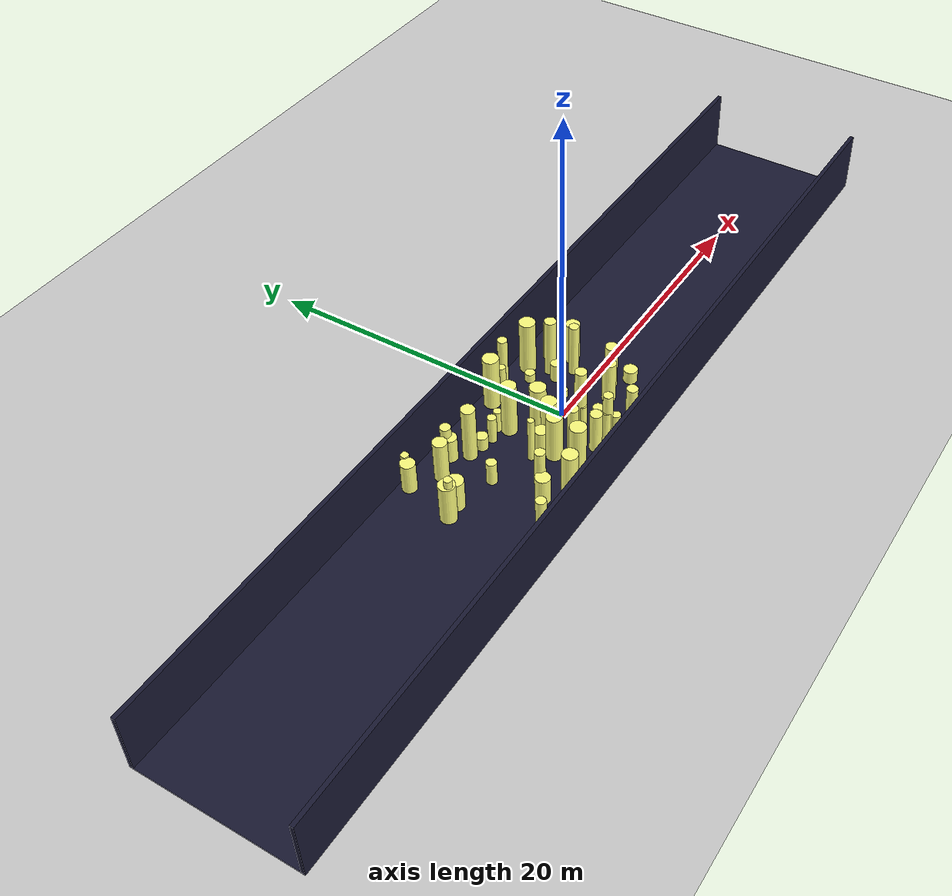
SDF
<sdf version="1.4">
 <world name="default">
  <include><uri>model://ground_plane</uri></include>
  <include><uri>model://sun</uri></include>
  <model name="forest">
   <static>true</static>
   <link name="cylinder3">
    <pose>-8.564383305479438 -3.849886137093559 1.5123958988349284 0 0 0</pose>
    <visual name="visual">
     <geometry>
      <cylinder><radius>0.30243147252921776</radius><length>3.024791797669857</length></cylinder>
     </geometry>
     <material>
      <ambient>0.6 0.6 0.6 1</ambient>
      <diffuse>1 1 0.5 1</diffuse>
      <specular>0 0 0</specular>
      <emissive>0 0 0 1</emissive>
     </material>
    </visual>
    <collision name="collision">
     <geometry>
      <cylinder><radius>0.30243147252921776</radius><length>3.024791797669857</length></cylinder>
     </geometry>
     <max_contacts>0</max_contacts>
    </collision>
   </link>
   <link name="cylinder4">
    <pose>-2.900554031618597 2.557931823986218 0.7568684038138516 0 0 0</pose>
    <visual name="visual">
     <geometry>
      <cylinder><radius>0.23991858585969472</radius><length>1.5137368076277031</length></cylinder>
     </geometry>
     <material>
      <ambient>0.6 0.6 0.6 1</ambient>
      <diffuse>1 1 0.5 1</diffuse>
      <specular>0 0 0</specular>
      <emissive>0 0 0 1</emissive>
     </material>
    </visual>
    <collision name="collision">
     <geometry>
      <cylinder><radius>0.23991858585969472</radius><length>1.5137368076277031</length></cylinder>
     </geometry>
     <max_contacts>0</max_contacts>
    </collision>
   </link>
   <link name="cylinder5">
    <pose>1.313964049926085 -3.8849885170803002 1.1643307283110613 0 0 0</pose>
    <visual name="visual">
     <geometry>
      <cylinder><radius>0.34957092293422487</radius><length>2.3286614566221226</length></cylinder>
     </geometry>
     <material>
      <ambient>0.6 0.6 0.6 1</ambient>
      <diffuse>1 1 0.5 1</diffuse>
      <specular>0 0 0</specular>
      <emissive>0 0 0 1</emissive>
     </material>
    </visual>
    <collision name="collision">
     <geometry>
      <cylinder><radius>0.34957092293422487</radius><length>2.3286614566221226</length></cylinder>
     </geometry>
     <max_contacts>0</max_contacts>
    </collision>
   </link>
   <link name="cylinder8">
    <pose>3.702451197373353 -1.1173654504020272 1.5423725622052054 0 0 0</pose>
    <visual name="visual">
     <geometry>
      <cylinder><radius>0.3797419441660974</radius><length>3.0847451244104107</length></cylinder>
     </geometry>
     <material>
      <ambient>0.6 0.6 0.6 1</ambient>
      <diffuse>1 1 0.5 1</diffuse>
      <specular>0 0 0</specular>
      <emissive>0 0 0 1</emissive>
     </material>
    </visual>
    <collision name="collision">
     <geometry>
      <cylinder><radius>0.3797419441660974</radius><length>3.0847451244104107</length></cylinder>
     </geometry>
     <max_contacts>0</max_contacts>
    </collision>
   </link>
   <link name="cylinder10">
    <pose>-0.7432844458045196 3.606858276507017 1.3522364615848521 0 0 0</pose>
    <visual name="visual">
     <geometry>
      <cylinder><radius>0.2308794543132723</radius><length>2.7044729231697042</length></cylinder>
     </geometry>
     <material>
      <ambient>0.6 0.6 0.6 1</ambient>
      <diffuse>1 1 0.5 1</diffuse>
      <specular>0 0 0</specular>
      <emissive>0 0 0 1</emissive>
     </material>
    </visual>
    <collision name="collision">
     <geometry>
      <cylinder><radius>0.2308794543132723</radius><length>2.7044729231697042</length></cylinder>
     </geometry>
     <max_contacts>0</max_contacts>
    </collision>
   </link>
   <link name="cylinder11">
    <pose>-6.175850569645785 -2.4807912993549444 0.9096561768423661 0 0 0</pose>
    <visual name="visual">
     <geometry>
      <cylinder><radius>0.44854788550880226</radius><length>1.8193123536847322</length></cylinder>
     </geometry>
     <material>
      <ambient>0.6 0.6 0.6 1</ambient>
      <diffuse>1 1 0.5 1</diffuse>
      <specular>0 0 0</specular>
      <emissive>0 0 0 1</emissive>
     </material>
    </visual>
    <collision name="collision">
     <geometry>
      <cylinder><radius>0.44854788550880226</radius><length>1.8193123536847322</length></cylinder>
     </geometry>
     <max_contacts>0</max_contacts>
    </collision>
   </link>
   <link name="cylinder14">
    <pose>0.38465863244394427 -2.1824603545408303 0.7296094701448637 0 0 0</pose>
    <visual name="visual">
     <geometry>
      <cylinder><radius>0.3377690477103479</radius><length>1.4592189402897273</length></cylinder>
     </geometry>
     <material>
      <ambient>0.6 0.6 0.6 1</ambient>
      <diffuse>1 1 0.5 1</diffuse>
      <specular>0 0 0</specular>
      <emissive>0 0 0 1</emissive>
     </material>
    </visual>
    <collision name="collision">
     <geometry>
      <cylinder><radius>0.3377690477103479</radius><length>1.4592189402897273</length></cylinder>
     </geometry>
     <max_contacts>0</max_contacts>
    </collision>
   </link>
   <link name="cylinder16">
    <pose>-1.9539033908960448 -0.29834200253286536 1.4721334536363095 0 0 0</pose>
    <visual name="visual">
     <geometry>
      <cylinder><radius>0.47072366416954475</radius><length>2.944266907272619</length></cylinder>
     </geometry>
     <material>
      <ambient>0.6 0.6 0.6 1</ambient>
      <diffuse>1 1 0.5 1</diffuse>
      <specular>0 0 0</specular>
      <emissive>0 0 0 1</emissive>
     </material>
    </visual>
    <collision name="collision">
     <geometry>
      <cylinder><radius>0.47072366416954475</radius><length>2.944266907272619</length></cylinder>
     </geometry>
     <max_contacts>0</max_contacts>
    </collision>
   </link>
   <link name="cylinder19">
    <pose>-3.765693110406204 2.355463253587745 0.9191963411689219 0 0 0</pose>
    <visual name="visual">
     <geometry>
      <cylinder><radius>0.2706350855969597</radius><length>1.8383926823378438</length></cylinder>
     </geometry>
     <material>
      <ambient>0.6 0.6 0.6 1</ambient>
      <diffuse>1 1 0.5 1</diffuse>
      <specular>0 0 0</specular>
      <emissive>0 0 0 1</emissive>
     </material>
    </visual>
    <collision name="collision">
     <geometry>
      <cylinder><radius>0.2706350855969597</radius><length>1.8383926823378438</length></cylinder>
     </geometry>
     <max_contacts>0</max_contacts>
    </collision>
   </link>
   <link name="cylinder21">
    <pose>-6.465806620505148 0.6290368193749618 0.784559223407981 0 0 0</pose>
    <visual name="visual">
     <geometry>
      <cylinder><radius>0.3131240611195635</radius><length>1.569118446815962</length></cylinder>
     </geometry>
     <material>
      <ambient>0.6 0.6 0.6 1</ambient>
      <diffuse>1 1 0.5 1</diffuse>
      <specular>0 0 0</specular>
      <emissive>0 0 0 1</emissive>
     </material>
    </visual>
    <collision name="collision">
     <geometry>
      <cylinder><radius>0.3131240611195635</radius><length>1.569118446815962</length></cylinder>
     </geometry>
     <max_contacts>0</max_contacts>
    </collision>
   </link>
   <link name="cylinder24">
    <pose>2.6504902617085655 -1.5724567202440998 1.4095039634519797 0 0 0</pose>
    <visual name="visual">
     <geometry>
      <cylinder><radius>0.411862540570846</radius><length>2.8190079269039594</length></cylinder>
     </geometry>
     <material>
      <ambient>0.6 0.6 0.6 1</ambient>
      <diffuse>1 1 0.5 1</diffuse>
      <specular>0 0 0</specular>
      <emissive>0 0 0 1</emissive>
     </material>
    </visual>
    <collision name="collision">
     <geometry>
      <cylinder><radius>0.411862540570846</radius><length>2.8190079269039594</length></cylinder>
     </geometry>
     <max_contacts>0</max_contacts>
    </collision>
   </link>
   <link name="cylinder27">
    <pose>0.030223723886287246 -1.3574997205438324 0.729812917239677 0 0 0</pose>
    <visual name="visual">
     <geometry>
      <cylinder><radius>0.23898480077361903</radius><length>1.459625834479354</length></cylinder>
     </geometry>
     <material>
      <ambient>0.6 0.6 0.6 1</ambient>
      <diffuse>1 1 0.5 1</diffuse>
      <specular>0 0 0</specular>
      <emissive>0 0 0 1</emissive>
     </material>
    </visual>
    <collision name="collision">
     <geometry>
      <cylinder><radius>0.23898480077361903</radius><length>1.459625834479354</length></cylinder>
     </geometry>
     <max_contacts>0</max_contacts>
    </collision>
   </link>
   <link name="cylinder31">
    <pose>-5.7248087732027955 -3.898096598784978 1.9844881413474247 0 0 0</pose>
    <visual name="visual">
     <geometry>
      <cylinder><radius>0.4616749639141078</radius><length>3.9689762826948494</length></cylinder>
     </geometry>
     <material>
      <ambient>0.6 0.6 0.6 1</ambient>
      <diffuse>1 1 0.5 1</diffuse>
      <specular>0 0 0</specular>
      <emissive>0 0 0 1</emissive>
     </material>
    </visual>
    <collision name="collision">
     <geometry>
      <cylinder><radius>0.4616749639141078</radius><length>3.9689762826948494</length></cylinder>
     </geometry>
     <max_contacts>0</max_contacts>
    </collision>
   </link>
   <link name="cylinder32">
    <pose>-2.612749098027951 1.9390665615845082 1.7797026861179794 0 0 0</pose>
    <visual name="visual">
     <geometry>
      <cylinder><radius>0.46663268230172333</radius><length>3.559405372235959</length></cylinder>
     </geometry>
     <material>
      <ambient>0.6 0.6 0.6 1</ambient>
      <diffuse>1 1 0.5 1</diffuse>
      <specular>0 0 0</specular>
      <emissive>0 0 0 1</emissive>
     </material>
    </visual>
    <collision name="collision">
     <geometry>
      <cylinder><radius>0.46663268230172333</radius><length>3.559405372235959</length></cylinder>
     </geometry>
     <max_contacts>0</max_contacts>
    </collision>
   </link>
   <link name="cylinder36">
    <pose>-1.5742121338384827 0.6539919885100796 1.617637387164022 0 0 0</pose>
    <visual name="visual">
     <geometry>
      <cylinder><radius>0.4964075488692837</radius><length>3.235274774328044</length></cylinder>
     </geometry>
     <material>
      <ambient>0.6 0.6 0.6 1</ambient>
      <diffuse>1 1 0.5 1</diffuse>
      <specular>0 0 0</specular>
      <emissive>0 0 0 1</emissive>
     </material>
    </visual>
    <collision name="collision">
     <geometry>
      <cylinder><radius>0.4964075488692837</radius><length>3.235274774328044</length></cylinder>
     </geometry>
     <max_contacts>0</max_contacts>
    </collision>
   </link>
   <link name="cylinder41">
    <pose>4.68731782256253 -1.9014256234514848 0.46083601857654544 0 0 0</pose>
    <visual name="visual">
     <geometry>
      <cylinder><radius>0.4309551025935311</radius><length>0.9216720371530909</length></cylinder>
     </geometry>
     <material>
      <ambient>0.6 0.6 0.6 1</ambient>
      <diffuse>1 1 0.5 1</diffuse>
      <specular>0 0 0</specular>
      <emissive>0 0 0 1</emissive>
     </material>
    </visual>
    <collision name="collision">
     <geometry>
      <cylinder><radius>0.4309551025935311</radius><length>0.9216720371530909</length></cylinder>
     </geometry>
     <max_contacts>0</max_contacts>
    </collision>
   </link>
   <link name="cylinder45">
    <pose>-1.3032437107933568 -2.973867848958396 1.3769102334652517 0 0 0</pose>
    <visual name="visual">
     <geometry>
      <cylinder><radius>0.36313667066523897</radius><length>2.7538204669305033</length></cylinder>
     </geometry>
     <material>
      <ambient>0.6 0.6 0.6 1</ambient>
      <diffuse>1 1 0.5 1</diffuse>
      <specular>0 0 0</specular>
      <emissive>0 0 0 1</emissive>
     </material>
    </visual>
    <collision name="collision">
     <geometry>
      <cylinder><radius>0.36313667066523897</radius><length>2.7538204669305033</length></cylinder>
     </geometry>
     <max_contacts>0</max_contacts>
    </collision>
   </link>
   <link name="cylinder47">
    <pose>-2.881032032274838 -0.36255889499444915 0.747176304831089 0 0 0</pose>
    <visual name="visual">
     <geometry>
      <cylinder><radius>0.4252923107288233</radius><length>1.494352609662178</length></cylinder>
     </geometry>
     <material>
      <ambient>0.6 0.6 0.6 1</ambient>
      <diffuse>1 1 0.5 1</diffuse>
      <specular>0 0 0</specular>
      <emissive>0 0 0 1</emissive>
     </material>
    </visual>
    <collision name="collision">
     <geometry>
      <cylinder><radius>0.4252923107288233</radius><length>1.494352609662178</length></cylinder>
     </geometry>
     <max_contacts>0</max_contacts>
    </collision>
   </link>
   <link name="cylinder48">
    <pose>2.4846986057671145 1.9130466747569361 0.6471594099374249 0 0 0</pose>
    <visual name="visual">
     <geometry>
      <cylinder><radius>0.33719902281976466</radius><length>1.2943188198748499</length></cylinder>
     </geometry>
     <material>
      <ambient>0.6 0.6 0.6 1</ambient>
      <diffuse>1 1 0.5 1</diffuse>
      <specular>0 0 0</specular>
      <emissive>0 0 0 1</emissive>
     </material>
    </visual>
    <collision name="collision">
     <geometry>
      <cylinder><radius>0.33719902281976466</radius><length>1.2943188198748499</length></cylinder>
     </geometry>
     <max_contacts>0</max_contacts>
    </collision>
   </link>
   <link name="cylinder52">
    <pose>0.3368699926229901 -4.299567529728484 1.9949361753774957 0 0 0</pose>
    <visual name="visual">
     <geometry>
      <cylinder><radius>0.3314914886592272</radius><length>3.9898723507549914</length></cylinder>
     </geometry>
     <material>
      <ambient>0.6 0.6 0.6 1</ambient>
      <diffuse>1 1 0.5 1</diffuse>
      <specular>0 0 0</specular>
      <emissive>0 0 0 1</emissive>
     </material>
    </visual>
    <collision name="collision">
     <geometry>
      <cylinder><radius>0.3314914886592272</radius><length>3.9898723507549914</length></cylinder>
     </geometry>
     <max_contacts>0</max_contacts>
    </collision>
   </link>
   <link name="cylinder59">
    <pose>-5.707107157399356 -2.0282953423020844 1.5502964679855378 0 0 0</pose>
    <visual name="visual">
     <geometry>
      <cylinder><radius>0.31808759075491394</radius><length>3.1005929359710755</length></cylinder>
     </geometry>
     <material>
      <ambient>0.6 0.6 0.6 1</ambient>
      <diffuse>1 1 0.5 1</diffuse>
      <specular>0 0 0</specular>
      <emissive>0 0 0 1</emissive>
     </material>
    </visual>
    <collision name="collision">
     <geometry>
      <cylinder><radius>0.31808759075491394</radius><length>3.1005929359710755</length></cylinder>
     </geometry>
     <max_contacts>0</max_contacts>
    </collision>
   </link>
   <link name="cylinder62">
    <pose>-2.901472166175374 -2.7436957905164228 1.4894896232662533 0 0 0</pose>
    <visual name="visual">
     <geometry>
      <cylinder><radius>0.49416868157909205</radius><length>2.9789792465325067</length></cylinder>
     </geometry>
     <material>
      <ambient>0.6 0.6 0.6 1</ambient>
      <diffuse>1 1 0.5 1</diffuse>
      <specular>0 0 0</specular>
      <emissive>0 0 0 1</emissive>
     </material>
    </visual>
    <collision name="collision">
     <geometry>
      <cylinder><radius>0.49416868157909205</radius><length>2.9789792465325067</length></cylinder>
     </geometry>
     <max_contacts>0</max_contacts>
    </collision>
   </link>
   <link name="cylinder64">
    <pose>-2.9951060131589173 -1.282730983613277 1.5510060885853776 0 0 0</pose>
    <visual name="visual">
     <geometry>
      <cylinder><radius>0.4828278855854824</radius><length>3.102012177170755</length></cylinder>
     </geometry>
     <material>
      <ambient>0.6 0.6 0.6 1</ambient>
      <diffuse>1 1 0.5 1</diffuse>
      <specular>0 0 0</specular>
      <emissive>0 0 0 1</emissive>
     </material>
    </visual>
    <collision name="collision">
     <geometry>
      <cylinder><radius>0.4828278855854824</radius><length>3.102012177170755</length></cylinder>
     </geometry>
     <max_contacts>0</max_contacts>
    </collision>
   </link>
   <link name="cylinder65">
    <pose>-4.54233675551416 2.539219464537606 0.4785798824447355 0 0 0</pose>
    <visual name="visual">
     <geometry>
      <cylinder><radius>0.36170618760472717</radius><length>0.957159764889471</length></cylinder>
     </geometry>
     <material>
      <ambient>0.6 0.6 0.6 1</ambient>
      <diffuse>1 1 0.5 1</diffuse>
      <specular>0 0 0</specular>
      <emissive>0 0 0 1</emissive>
     </material>
    </visual>
    <collision name="collision">
     <geometry>
      <cylinder><radius>0.36170618760472717</radius><length>0.957159764889471</length></cylinder>
     </geometry>
     <max_contacts>0</max_contacts>
    </collision>
   </link>
   <link name="cylinder68">
    <pose>-1.8989215876720245 -1.8381434383348196 1.534291837957601 0 0 0</pose>
    <visual name="visual">
     <geometry>
      <cylinder><radius>0.32201063985585865</radius><length>3.068583675915202</length></cylinder>
     </geometry>
     <material>
      <ambient>0.6 0.6 0.6 1</ambient>
      <diffuse>1 1 0.5 1</diffuse>
      <specular>0 0 0</specular>
      <emissive>0 0 0 1</emissive>
     </material>
    </visual>
    <collision name="collision">
     <geometry>
      <cylinder><radius>0.32201063985585865</radius><length>3.068583675915202</length></cylinder>
     </geometry>
     <max_contacts>0</max_contacts>
    </collision>
   </link>
   <link name="cylinder71">
    <pose>3.55687519586791 1.335641643773612 1.8053275692516058 0 0 0</pose>
    <visual name="visual">
     <geometry>
      <cylinder><radius>0.3002299005960643</radius><length>3.6106551385032115</length></cylinder>
     </geometry>
     <material>
      <ambient>0.6 0.6 0.6 1</ambient>
      <diffuse>1 1 0.5 1</diffuse>
      <specular>0 0 0</specular>
      <emissive>0 0 0 1</emissive>
     </material>
    </visual>
    <collision name="collision">
     <geometry>
      <cylinder><radius>0.3002299005960643</radius><length>3.6106551385032115</length></cylinder>
     </geometry>
     <max_contacts>0</max_contacts>
    </collision>
   </link>
   <link name="cylinder80">
    <pose>-6.098725534083886 3.879434132987713 1.137054922231386 0 0 0</pose>
    <visual name="visual">
     <geometry>
      <cylinder><radius>0.32784471056318054</radius><length>2.274109844462772</length></cylinder>
     </geometry>
     <material>
      <ambient>0.6 0.6 0.6 1</ambient>
      <diffuse>1 1 0.5 1</diffuse>
      <specular>0 0 0</specular>
      <emissive>0 0 0 1</emissive>
     </material>
    </visual>
    <collision name="collision">
     <geometry>
      <cylinder><radius>0.32784471056318054</radius><length>2.274109844462772</length></cylinder>
     </geometry>
     <max_contacts>0</max_contacts>
    </collision>
   </link>
   <link name="cylinder88">
    <pose>-9.224213583265206 4.217156609399343 1.009532255283689 0 0 0</pose>
    <visual name="visual">
     <geometry>
      <cylinder><radius>0.44033797675550085</radius><length>2.019064510567378</length></cylinder>
     </geometry>
     <material>
      <ambient>0.6 0.6 0.6 1</ambient>
      <diffuse>1 1 0.5 1</diffuse>
      <specular>0 0 0</specular>
      <emissive>0 0 0 1</emissive>
     </material>
    </visual>
    <collision name="collision">
     <geometry>
      <cylinder><radius>0.44033797675550085</radius><length>2.019064510567378</length></cylinder>
     </geometry>
     <max_contacts>0</max_contacts>
    </collision>
   </link>
   <link name="cylinder91">
    <pose>3.7326632786939165 3.1250581038408107 1.0998334411011021 0 0 0</pose>
    <visual name="visual">
     <geometry>
      <cylinder><radius>0.2906271640071058</radius><length>2.1996668822022043</length></cylinder>
     </geometry>
     <material>
      <ambient>0.6 0.6 0.6 1</ambient>
      <diffuse>1 1 0.5 1</diffuse>
      <specular>0 0 0</specular>
      <emissive>0 0 0 1</emissive>
     </material>
    </visual>
    <collision name="collision">
     <geometry>
      <cylinder><radius>0.2906271640071058</radius><length>2.1996668822022043</length></cylinder>
     </geometry>
     <max_contacts>0</max_contacts>
    </collision>
   </link>
   <link name="cylinder92">
    <pose>-0.6161490323073053 -3.3210218632947597 1.8911828906524513 0 0 0</pose>
    <visual name="visual">
     <geometry>
      <cylinder><radius>0.29054452830170385</radius><length>3.7823657813049025</length></cylinder>
     </geometry>
     <material>
      <ambient>0.6 0.6 0.6 1</ambient>
      <diffuse>1 1 0.5 1</diffuse>
      <specular>0 0 0</specular>
      <emissive>0 0 0 1</emissive>
     </material>
    </visual>
    <collision name="collision">
     <geometry>
      <cylinder><radius>0.29054452830170385</radius><length>3.7823657813049025</length></cylinder>
     </geometry>
     <max_contacts>0</max_contacts>
    </collision>
   </link>
   <link name="cylinder94">
    <pose>-9.96054176209592 1.0023696540328606 1.5916842839456575 0 0 0</pose>
    <visual name="visual">
     <geometry>
      <cylinder><radius>0.2430183064359484</radius><length>3.183368567891315</length></cylinder>
     </geometry>
     <material>
      <ambient>0.6 0.6 0.6 1</ambient>
      <diffuse>1 1 0.5 1</diffuse>
      <specular>0 0 0</specular>
      <emissive>0 0 0 1</emissive>
     </material>
    </visual>
    <collision name="collision">
     <geometry>
      <cylinder><radius>0.2430183064359484</radius><length>3.183368567891315</length></cylinder>
     </geometry>
     <max_contacts>0</max_contacts>
    </collision>
   </link>
   <link name="cylinder98">
    <pose>1.4197499018914996 0.7902394305296916 0.28476629504348544 0 0 0</pose>
    <visual name="visual">
     <geometry>
      <cylinder><radius>0.28165011418789415</radius><length>0.5695325900869709</length></cylinder>
     </geometry>
     <material>
      <ambient>0.6 0.6 0.6 1</ambient>
      <diffuse>1 1 0.5 1</diffuse>
      <specular>0 0 0</specular>
      <emissive>0 0 0 1</emissive>
     </material>
    </visual>
    <collision name="collision">
     <geometry>
      <cylinder><radius>0.28165011418789415</radius><length>0.5695325900869709</length></cylinder>
     </geometry>
     <max_contacts>0</max_contacts>
    </collision>
   </link>
   <link name="cylinder99">
    <pose>0.46635470393333733 -3.2990086980953635 0.6946655830516713 0 0 0</pose>
    <visual name="visual">
     <geometry>
      <cylinder><radius>0.27491594712833317</radius><length>1.3893311661033425</length></cylinder>
     </geometry>
     <material>
      <ambient>0.6 0.6 0.6 1</ambient>
      <diffuse>1 1 0.5 1</diffuse>
      <specular>0 0 0</specular>
      <emissive>0 0 0 1</emissive>
     </material>
    </visual>
    <collision name="collision">
     <geometry>
      <cylinder><radius>0.27491594712833317</radius><length>1.3893311661033425</length></cylinder>
     </geometry>
     <max_contacts>0</max_contacts>
    </collision>
   </link>
   <link name="cylinder100">
    <pose>4.464904300927575 1.9443229293934783 1.4371969412566916 0 0 0</pose>
    <visual name="visual">
     <geometry>
      <cylinder><radius>0.43288922981666694</radius><length>2.8743938825133832</length></cylinder>
     </geometry>
     <material>
      <ambient>0.6 0.6 0.6 1</ambient>
      <diffuse>1 1 0.5 1</diffuse>
      <specular>0 0 0</specular>
      <emissive>0 0 0 1</emissive>
     </material>
    </visual>
    <collision name="collision">
     <geometry>
      <cylinder><radius>0.43288922981666694</radius><length>2.8743938825133832</length></cylinder>
     </geometry>
     <max_contacts>0</max_contacts>
    </collision>
   </link>
   <link name="cylinder103">
    <pose>-7.620244781414311 3.1677562531893866 1.3950425901492092 0 0 0</pose>
    <visual name="visual">
     <geometry>
      <cylinder><radius>0.4312570861224574</radius><length>2.7900851802984183</length></cylinder>
     </geometry>
     <material>
      <ambient>0.6 0.6 0.6 1</ambient>
      <diffuse>1 1 0.5 1</diffuse>
      <specular>0 0 0</specular>
      <emissive>0 0 0 1</emissive>
     </material>
    </visual>
    <collision name="collision">
     <geometry>
      <cylinder><radius>0.4312570861224574</radius><length>2.7900851802984183</length></cylinder>
     </geometry>
     <max_contacts>0</max_contacts>
    </collision>
   </link>
   <link name="cylinder112">
    <pose>-3.8356398133123903 -0.29216116538465986 1.5063064734101204 0 0 0</pose>
    <visual name="visual">
     <geometry>
      <cylinder><radius>0.20005546999913493</radius><length>3.0126129468202407</length></cylinder>
     </geometry>
     <material>
      <ambient>0.6 0.6 0.6 1</ambient>
      <diffuse>1 1 0.5 1</diffuse>
      <specular>0 0 0</specular>
      <emissive>0 0 0 1</emissive>
     </material>
    </visual>
    <collision name="collision">
     <geometry>
      <cylinder><radius>0.20005546999913493</radius><length>3.0126129468202407</length></cylinder>
     </geometry>
     <max_contacts>0</max_contacts>
    </collision>
   </link>
   <link name="cylinder113">
    <pose>2.43694919608987 3.8603025231287056 1.8229751229897113 0 0 0</pose>
    <visual name="visual">
     <geometry>
      <cylinder><radius>0.49443951826846944</radius><length>3.6459502459794226</length></cylinder>
     </geometry>
     <material>
      <ambient>0.6 0.6 0.6 1</ambient>
      <diffuse>1 1 0.5 1</diffuse>
      <specular>0 0 0</specular>
      <emissive>0 0 0 1</emissive>
     </material>
    </visual>
    <collision name="collision">
     <geometry>
      <cylinder><radius>0.49443951826846944</radius><length>3.6459502459794226</length></cylinder>
     </geometry>
     <max_contacts>0</max_contacts>
    </collision>
   </link>
   <link name="cylinder117">
    <pose>2.897586479834956 2.559871945268725 1.9816346219142695 0 0 0</pose>
    <visual name="visual">
     <geometry><cylinder><radius>0.357493862530637</radius><length>3.963269243828539</length></cylinder></geometry>
     <material>
      <ambient>0.6 0.6 0.6 1</ambient>
      <diffuse>1 1 0.5 1</diffuse>
      <specular>0 0 0</specular>
      <emissive>0 0 0 1</emissive>
     </material>
    </visual>
    <collision name="collision">
     <geometry><cylinder><radius>0.357493862530637</radius><length>3.963269243828539</length></cylinder></geometry>
     <max_contacts>0</max_contacts>
    </collision>
   </link>
   <link name="cylinder118">
    <pose>-5.4494662610176725 2.7473687523887964 1.8380857468077971 0 0 0</pose>
    <visual name="visual">
     <geometry>
      <cylinder><radius>0.4203038354788231</radius><length>3.6761714936155943</length></cylinder>
     </geometry>
     <material>
      <ambient>0.6 0.6 0.6 1</ambient>
      <diffuse>1 1 0.5 1</diffuse>
      <specular>0 0 0</specular>
      <emissive>0 0 0 1</emissive>
     </material>
    </visual>
    <collision name="collision">
     <geometry>
      <cylinder><radius>0.4203038354788231</radius><length>3.6761714936155943</length></cylinder>
     </geometry>
     <max_contacts>0</max_contacts>
    </collision>
   </link>
   <link name="cylinder121">
    <pose>-6.1421523215631595 3.597571497101864 0.8369346737112413 0 0 0</pose>
    <visual name="visual">
     <geometry>
      <cylinder><radius>0.4268881265255663</radius><length>1.6738693474224826</length></cylinder>
     </geometry>
     <material>
      <ambient>0.6 0.6 0.6 1</ambient>
      <diffuse>1 1 0.5 1</diffuse>
      <specular>0 0 0</specular>
      <emissive>0 0 0 1</emissive>
     </material>
    </visual>
    <collision name="collision">
     <geometry>
      <cylinder><radius>0.4268881265255663</radius><length>1.6738693474224826</length></cylinder>
     </geometry>
     <max_contacts>0</max_contacts>
    </collision>
   </link>
   <link name="cylinder127">
    <pose>3.8747399577409354 3.4296988382501485 1.3261382088109206 0 0 0</pose>
    <visual name="visual">
     <geometry>
      <cylinder><radius>0.20828899124055336</radius><length>2.652276417621841</length></cylinder>
     </geometry>
     <material>
      <ambient>0.6 0.6 0.6 1</ambient>
      <diffuse>1 1 0.5 1</diffuse>
      <specular>0 0 0</specular>
      <emissive>0 0 0 1</emissive>
     </material>
    </visual>
    <collision name="collision">
     <geometry>
      <cylinder><radius>0.20828899124055336</radius><length>2.652276417621841</length></cylinder>
     </geometry>
     <max_contacts>0</max_contacts>
    </collision>
   </link>
   <link name="cylinder129">
    <pose>0.26336360072378184 4.188430885101191 1.8678872177236896 0 0 0</pose>
    <visual name="visual">
     <geometry>
      <cylinder><radius>0.2975670451405648</radius><length>3.735774435447379</length></cylinder>
     </geometry>
     <material>
      <ambient>0.6 0.6 0.6 1</ambient>
      <diffuse>1 1 0.5 1</diffuse>
      <specular>0 0 0</specular>
      <emissive>0 0 0 1</emissive>
     </material>
    </visual>
    <collision name="collision">
     <geometry>
      <cylinder><radius>0.2975670451405648</radius><length>3.735774435447379</length></cylinder>
     </geometry>
     <max_contacts>0</max_contacts>
    </collision>
   </link>
   <link name="cylinder134">
    <pose>-8.853388724915135 4.666249287144604 1.0493172652188156 0 0 0</pose>
    <visual name="visual">
     <geometry>
      <cylinder><radius>0.24353815274793633</radius><length>2.0986345304376313</length></cylinder>
     </geometry>
     <material>
      <ambient>0.6 0.6 0.6 1</ambient>
      <diffuse>1 1 0.5 1</diffuse>
      <specular>0 0 0</specular>
      <emissive>0 0 0 1</emissive>
     </material>
    </visual>
    <collision name="collision">
     <geometry>
      <cylinder><radius>0.24353815274793633</radius><length>2.0986345304376313</length></cylinder>
     </geometry>
     <max_contacts>0</max_contacts>
    </collision>
   </link>
   <link name="cylinder137">
    <pose>-0.7149118274022861 -3.3181459820902406 1.288974081148891 0 0 0</pose>
    <visual name="visual">
     <geometry>
      <cylinder><radius>0.27295589920849234</radius><length>2.577948162297782</length></cylinder>
     </geometry>
     <material>
      <ambient>0.6 0.6 0.6 1</ambient>
      <diffuse>1 1 0.5 1</diffuse>
      <specular>0 0 0</specular>
      <emissive>0 0 0 1</emissive>
     </material>
    </visual>
    <collision name="collision">
     <geometry>
      <cylinder><radius>0.27295589920849234</radius><length>2.577948162297782</length></cylinder>
     </geometry>
     <max_contacts>0</max_contacts>
    </collision>
   </link>
   <link name="cylinder138">
    <pose>0.11767130757747069 -1.1435620106782087 1.9669592801363691 0 0 0</pose>
    <visual name="visual">
     <geometry>
      <cylinder><radius>0.3605316557577114</radius><length>3.9339185602727382</length></cylinder>
     </geometry>
     <material>
      <ambient>0.6 0.6 0.6 1</ambient>
      <diffuse>1 1 0.5 1</diffuse>
      <specular>0 0 0</specular>
      <emissive>0 0 0 1</emissive>
     </material>
    </visual>
    <collision name="collision">
     <geometry>
      <cylinder><radius>0.3605316557577114</radius><length>3.9339185602727382</length></cylinder>
     </geometry>
     <max_contacts>0</max_contacts>
    </collision>
   </link>
   <link name="cylinder140">
    <pose>-1.266435596237077 4.002158132549184 1.7976649512535643 0 0 0</pose>
    <visual name="visual">
     <geometry>
      <cylinder><radius>0.492267081328623</radius><length>3.5953299025071286</length></cylinder>
     </geometry>
     <material>
      <ambient>0.6 0.6 0.6 1</ambient>
      <diffuse>1 1 0.5 1</diffuse>
      <specular>0 0 0</specular>
      <emissive>0 0 0 1</emissive>
     </material>
    </visual>
    <collision name="collision">
     <geometry>
      <cylinder><radius>0.492267081328623</radius><length>3.5953299025071286</length></cylinder>
     </geometry>
     <max_contacts>0</max_contacts>
    </collision>
   </link>
   <link name="cylinder145">
    <pose>-9.921110228316953 1.1462977838755748 1.3305198869228678 0 0 0</pose>
    <visual name="visual">
     <geometry>
      <cylinder><radius>0.4947384302649695</radius><length>2.6610397738457356</length></cylinder>
     </geometry>
     <material>
      <ambient>0.6 0.6 0.6 1</ambient>
      <diffuse>1 1 0.5 1</diffuse>
      <specular>0 0 0</specular>
      <emissive>0 0 0 1</emissive>
     </material>
    </visual>
    <collision name="collision">
     <geometry>
      <cylinder><radius>0.4947384302649695</radius><length>2.6610397738457356</length></cylinder>
     </geometry>
     <max_contacts>0</max_contacts>
    </collision>
   </link>
   <link name="cylinder146">
    <pose>-8.953565488328241 1.3027784847669768 1.0158829185135738 0 0 0</pose>
    <visual name="visual">
     <geometry>
      <cylinder><radius>0.4994470726311498</radius><length>2.0317658370271476</length></cylinder>
     </geometry>
     <material>
      <ambient>0.6 0.6 0.6 1</ambient>
      <diffuse>1 1 0.5 1</diffuse>
      <specular>0 0 0</specular>
      <emissive>0 0 0 1</emissive>
     </material>
    </visual>
    <collision name="collision">
     <geometry>
      <cylinder><radius>0.4994470726311498</radius><length>2.0317658370271476</length></cylinder>
     </geometry>
     <max_contacts>0</max_contacts>
    </collision>
   </link>
   <link name="cylinder147">
    <pose>1.609980040677815 3.187523490934666 0.32567510160443564 0 0 0</pose>
    <visual name="visual">
     <geometry>
      <cylinder><radius>0.30918645756059443</radius><length>0.6513502032088713</length></cylinder>
     </geometry>
     <material>
      <ambient>0.6 0.6 0.6 1</ambient>
      <diffuse>1 1 0.5 1</diffuse>
      <specular>0 0 0</specular>
      <emissive>0 0 0 1</emissive>
     </material>
    </visual>
    <collision name="collision">
     <geometry>
      <cylinder><radius>0.30918645756059443</radius><length>0.6513502032088713</length></cylinder>
     </geometry>
     <max_contacts>0</max_contacts>
    </collision>
   </link>
   <link name="cube0">
    <pose>0 5.0 2.0 0 0 0</pose>
    <visual name="visual">
     <geometry><box><size>60.0 0.25 4.0</size></box></geometry>
     <material>
      <ambient>0.1 0.1 0.1 1</ambient>
      <diffuse>0.1 0.1 0.2 1</diffuse>
      <specular>0 0 0</specular>
      <emissive>0 0 0 1</emissive>
     </material>
    </visual>
    <collision name="collision">
     <geometry><box><size>60.0 0.25 4.0</size></box></geometry>
     <max_contacts>0</max_contacts>
    </collision>
   </link>
   <link name="cube1">
    <pose>0 -5.0 2.0 0 0 0</pose>
    <visual name="visual">
     <geometry><box><size>60.0 0.25 4.0</size></box></geometry>
     <material>
      <ambient>0.1 0.1 0.1 1</ambient>
      <diffuse>0.1 0.1 0.2 1</diffuse>
      <specular>0 0 0</specular>
      <emissive>0 0 0 1</emissive>
     </material>
    </visual>
    <collision name="collision">
     <geometry><box><size>60.0 0.25 4.0</size></box></geometry>
     <max_contacts>0</max_contacts>
    </collision>
   </link>
   <link name="cube2">
    <pose>0 0 0.03125 0 0 0</pose>
    <visual name="visual">
     <geometry><box><size>60.0 10 0.0625</size></box></geometry>
     <material>
      <ambient>0.1 0.1 0.1 1</ambient>
      <diffuse>0.1 0.1 0.2 1</diffuse>
      <specular>0 0 0</specular>
      <emissive>0 0 0 1</emissive>
     </material>
    </visual>
    <collision name="collision">
     <geometry><box><size>60.0 10 0.0625</size></box></geometry>
     <max_contacts>0</max_contacts>
    </collision>
   </link>
  </model>
 </world>
</sdf>
